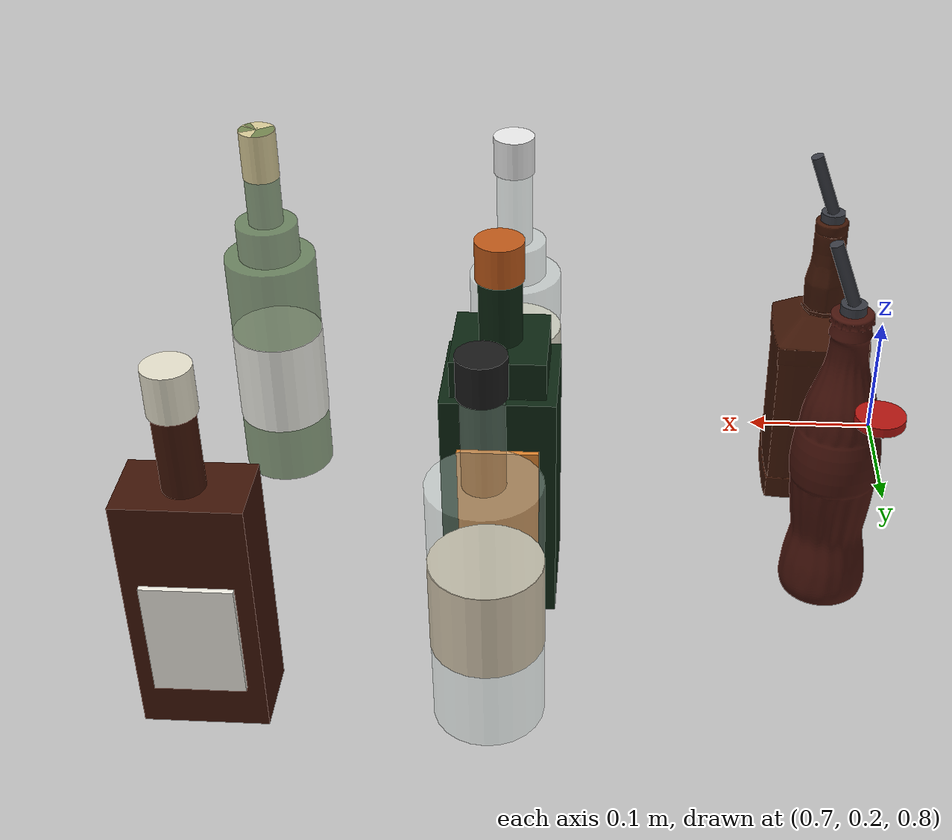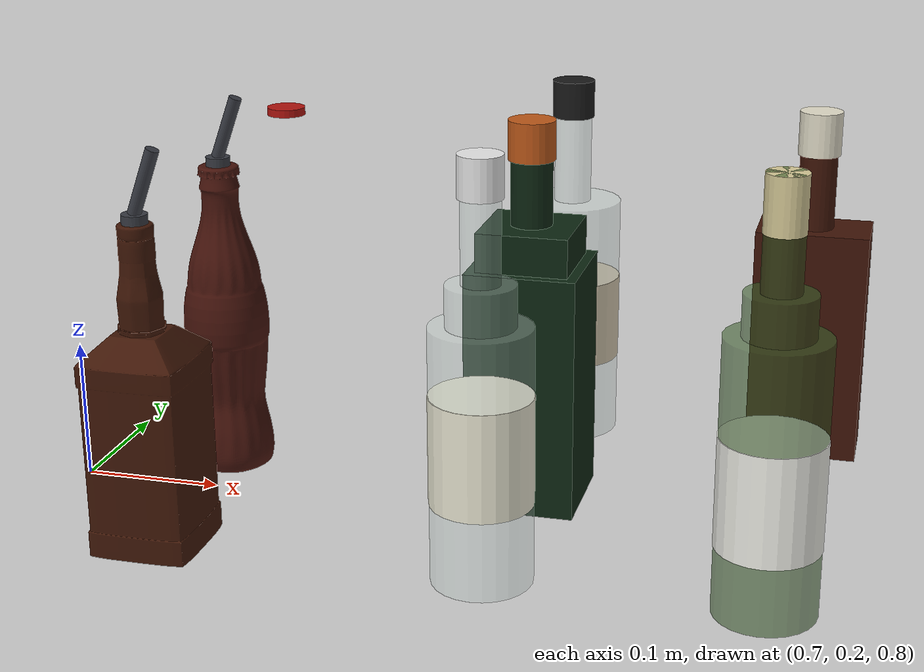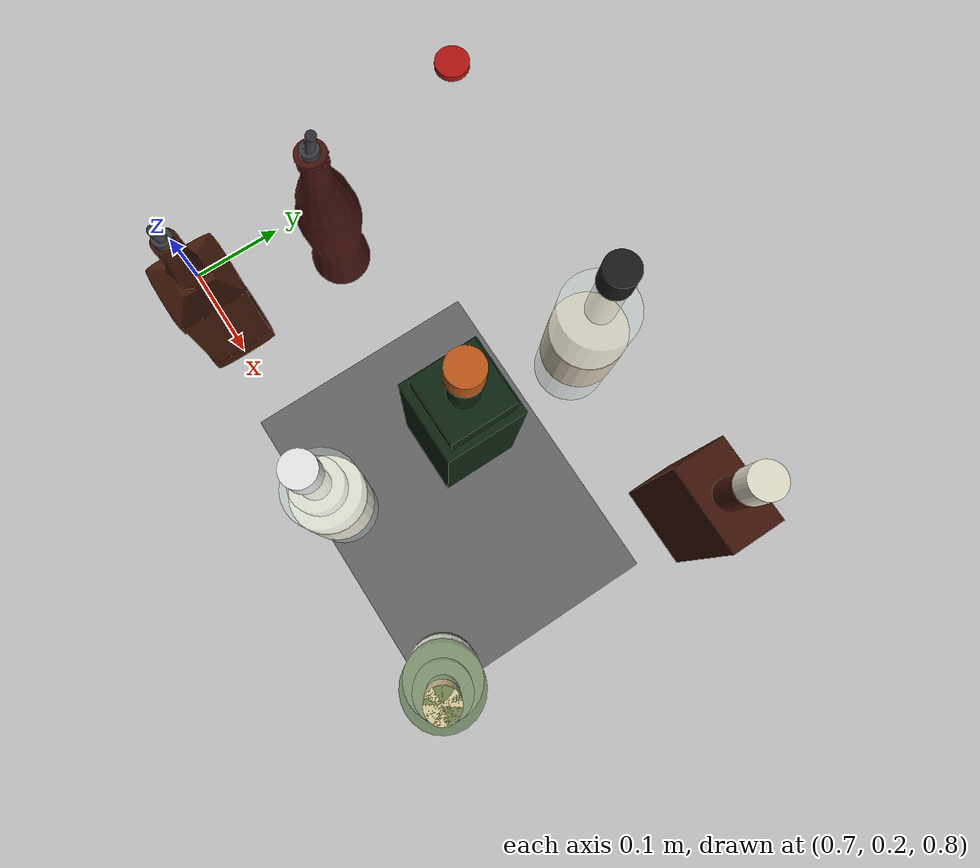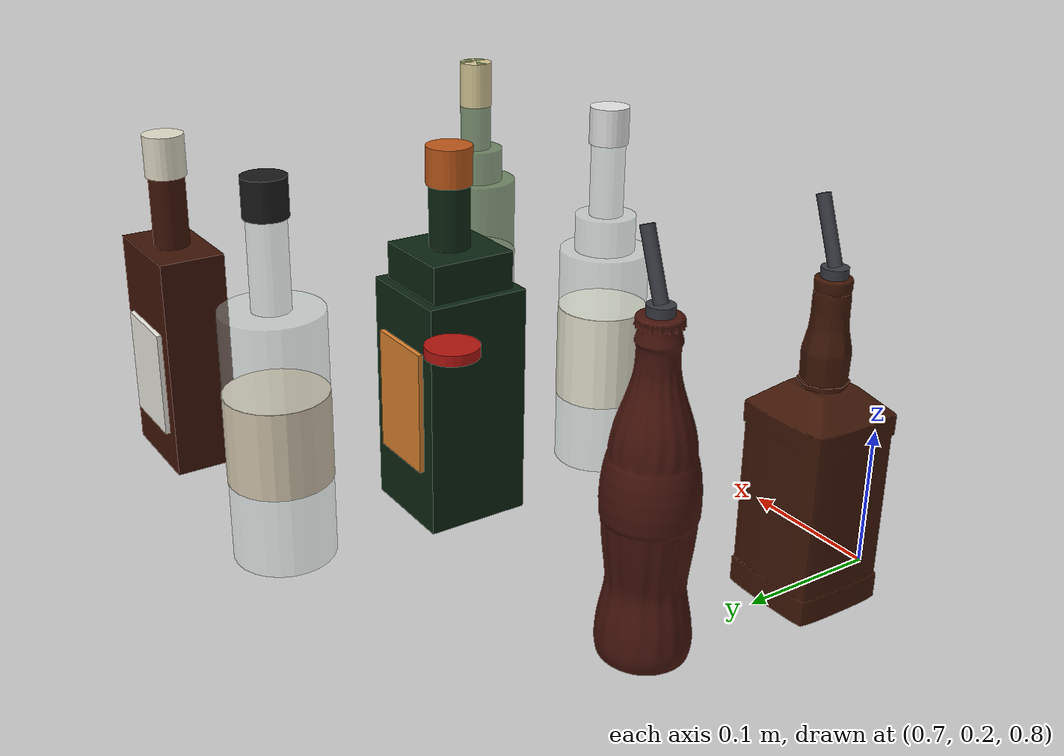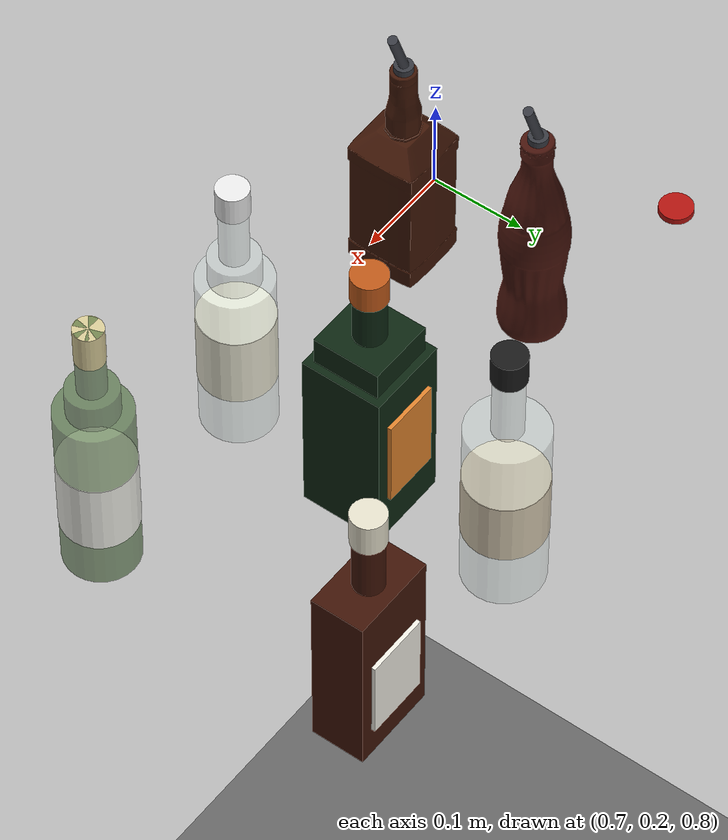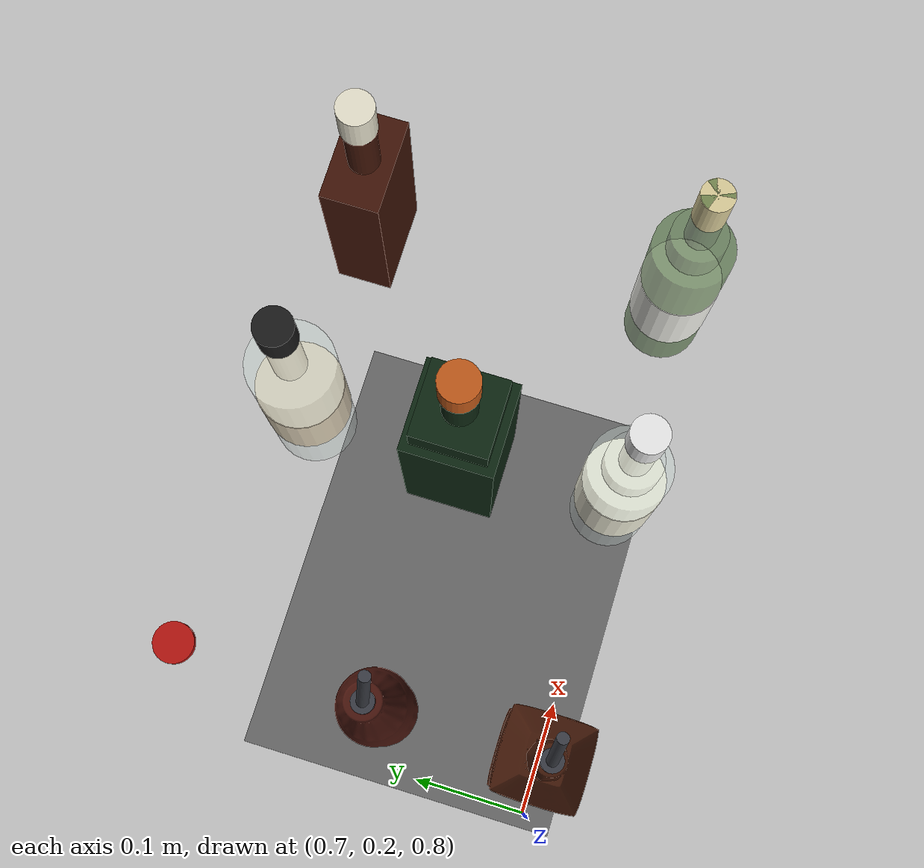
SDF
<sdf version="1.9">
 <world name="workcell_world">
  <physics name="1ms" type="ignored">
   <max_step_size>0.001</max_step_size>
   <real_time_factor>1.0</real_time_factor>
   <dart><collision_detector>bullet</collision_detector></dart>
  </physics>
  <plugin filename="gz-sim-physics-system" name="gz::sim::systems::Physics"/>
  <plugin filename="gz-sim-user-commands-system" name="gz::sim::systems::UserCommands"/>
  <plugin filename="gz-sim-scene-broadcaster-system" name="gz::sim::systems::SceneBroadcaster"/>
  <plugin filename="gz-sim-sensors-system" name="gz::sim::systems::Sensors">
   <render_engine>ogre2</render_engine>
  </plugin>
  <plugin filename="gz-sim-contact-system" name="gz::sim::systems::Contact"/>
  <light type="directional" name="sun">
   <pose>0 0 10 0 0 0</pose>
   <diffuse>0.8 0.8 0.8 1</diffuse>
   <specular>0.2 0.2 0.2 1</specular>
   <attenuation>
    <range>1000</range>
    <constant>0.9</constant>
    <linear>0.01</linear>
    <quadratic>0.001</quadratic>
   </attenuation>
   <direction>-0.5 0.1 -0.9</direction>
  </light>
  <model name="ground_plane">
   <static>true</static>
   <link name="link">
    <collision name="collision">
     <geometry><plane><normal>0 0 1</normal><size>100 100</size></plane></geometry>
    </collision>
    <visual name="ground_visual">
     <geometry><plane><normal>0 0 1</normal><size>100 100</size></plane></geometry>
     <material><ambient>0.3 0.3 0.3 1</ambient><diffuse>0.4 0.4 0.4 1</diffuse></material>
    </visual>
   </link>
  </model>
  <include>
   <uri>model://jack_daniels_bottle</uri>
   <name>jack_daniels_bottle</name>
   <plugin filename="gz-sim-label-system" name="gz::sim::systems::Label"><label>1</label></plugin>
   <pose>0.75 0.20 0.75 0 0 0</pose>
  </include>
  <include>
   <uri>model://cola_bottle</uri>
   <name>cola_bottle</name>
   <plugin filename="gz-sim-label-system" name="gz::sim::systems::Label"><label>2</label></plugin>
   <pose>0.75 0.35 0.75 0 0 0</pose>
  </include>
  <include><uri>model://beer_cap</uri><name>beer_cap</name><pose>0.75 0.50 1.0081 0 0 0</pose></include>
  <include>
   <uri>model://zubrowka_bottle</uri>
   <name>zubrowka_bottle</name>
   <plugin filename="gz-sim-label-system" name="gz::sim::systems::Label"><label>4</label></plugin>
   <pose>1.00 0.20 0.75 0 0 0</pose>
  </include>
  <include>
   <uri>model://jagermeister_bottle</uri>
   <name>jagermeister_bottle</name>
   <plugin filename="gz-sim-label-system" name="gz::sim::systems::Label"><label>5</label></plugin>
   <pose>1.00 0.35 0.75 0 0 0</pose>
  </include>
  <include>
   <uri>model://tenjaku_bottle</uri>
   <name>tenjaku_bottle</name>
   <plugin filename="gz-sim-label-system" name="gz::sim::systems::Label"><label>6</label></plugin>
   <pose>1.00 0.50 0.75 0 0 0</pose>
  </include>
  <include>
   <uri>model://frontera_bottle</uri>
   <name>frontera_bottle</name>
   <plugin filename="gz-sim-label-system" name="gz::sim::systems::Label"><label>7</label></plugin>
   <pose>1.20 0.20 0.75 0 0 0</pose>
  </include>
  <include>
   <uri>model://ballantines_bottle</uri>
   <name>ballantines_bottle</name>
   <plugin filename="gz-sim-label-system" name="gz::sim::systems::Label"><label>29</label></plugin>
   <pose>1.20 0.50 0.75 0 0 0</pose>
  </include>
  <model name="workcell_view_camera">
   <static>true</static>
   <pose>1.90 -0.40 1.50 0 0.487 2.583</pose>
   <link name="link">
    <sensor name="view_rgb" type="camera">
     <always_on>true</always_on>
     <update_rate>10</update_rate>
     <topic>/workcell/view_camera/image_raw</topic>
     <camera>
      <horizontal_fov>1.2566</horizontal_fov>
      <image><width>640</width><height>400</height><format>R8G8B8</format></image>
      <clip><near>0.1</near><far>6.0</far></clip>
     </camera>
    </sensor>
   </link>
  </model>
 </world>
</sdf>

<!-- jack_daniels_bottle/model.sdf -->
<sdf version="1.9">
  <model name="jack_daniels_bottle">
    <!-- Link origin sits at the center of the bottle's base, so placing the
         model's pose z at table height puts the bottle exactly on the surface. -->
    <link name="bottle_link">
      <inertial>
        <pose>0 0 0.1225 0 0 0</pose>
        <mass>1.35</mass>
        <inertia>
          <ixx>0.007256</ixx>
          <iyy>0.007256</iyy>
          <izz>0.001006</izz>
          <ixy>0</ixy>
          <ixz>0</ixz>
          <iyz>0</iyz>
        </inertia>
      </inertial>

      <visual name="bottle_visual">
        <!-- source mesh is Y-up (Blender OBJ export); rotate +90 deg about X
             so the bottle's height axis becomes Z-up as SDF expects. -->
        <pose>0 0 0 1.570796 0 0</pose>
        <geometry>
          <mesh>
            <uri>meshes/bottle.obj</uri>
          </mesh>
        </geometry>
        <material>
          <ambient>0.05 0.02 0.01 1</ambient>
          <diffuse>0.25 0.09 0.03 1</diffuse>
          <specular>0.4 0.4 0.4 1</specular>
          <emissive>0 0 0 1</emissive>
        </material>
      </visual>

      <collision name="bottle_body_collision">
        <pose>0 0 0.0750 0 0 0</pose>
        <geometry>
          <box>
            <size>0.0772 0.0772 0.150</size>
          </box>
        </geometry>
        <surface>
          <friction>
            <ode>
              <mu>0.9</mu>
              <mu2>0.9</mu2>
            </ode>
          </friction>
        </surface>
      </collision>

      <collision name="bottle_shoulder_collision">
        <pose>0 0 0.1625 0 0 0</pose>
        <geometry>
          <cylinder>
            <radius>0.0250</radius>
            <length>0.025</length>
          </cylinder>
        </geometry>
        <surface>
          <friction>
            <ode>
              <mu>0.9</mu>
              <mu2>0.9</mu2>
            </ode>
          </friction>
        </surface>
      </collision>

      <collision name="bottle_neck_collision">
        <pose>0 0 0.2100 0 0 0</pose>
        <geometry>
          <cylinder>
            <radius>0.0165</radius>
            <length>0.070</length>
          </cylinder>
        </geometry>
        <surface>
          <friction>
            <ode>
              <mu>0.9</mu>
              <mu2>0.9</mu2>
            </ode>
          </friction>
        </surface>
      </collision>

      <collision name="bottle_collar_collision">
        <pose>0 0 0.2360 0 0 0</pose>
        <geometry>
          <cylinder>
            <radius>0.0210</radius>
            <length>0.008</length>
          </cylinder>
        </geometry>
        <surface>
          <friction>
            <ode>
              <mu>0.9</mu>
              <mu2>0.9</mu2>
            </ode>
          </friction>
        </surface>
      </collision>

      <visual name="bottle_pourer_body_visual">
        <pose>0 0 0.2410 0 0 0</pose>
        <geometry><cylinder><radius>0.0095</radius><length>0.022</length></cylinder></geometry>
        <material>
          <ambient>0.05 0.05 0.06 1</ambient>
          <diffuse>0.22 0.23 0.26 1</diffuse>
          <specular>0.7 0.7 0.7 1</specular>
        </material>
      </visual>
      <visual name="bottle_pourer_spout_visual">
        <pose>0.0086 0 0.2755 0 0.349066 0</pose>
        <geometry><cylinder><radius>0.005</radius><length>0.050</length></cylinder></geometry>
        <material>
          <ambient>0.05 0.05 0.06 1</ambient>
          <diffuse>0.22 0.23 0.26 1</diffuse>
          <specular>0.7 0.7 0.7 1</specular>
        </material>
      </visual>

      <collision name="bottle_pourer_body_collision">
        <pose>0 0 0.2410 0 0 0</pose>
        <geometry><cylinder><radius>0.0095</radius><length>0.022</length></cylinder></geometry>
        <surface><friction><ode><mu>0.9</mu><mu2>0.9</mu2></ode></friction></surface>
      </collision>
      <collision name="bottle_pourer_spout_collision">
        <pose>0.0086 0 0.2755 0 0.349066 0</pose>
        <geometry><cylinder><radius>0.005</radius><length>0.050</length></cylinder></geometry>
        <surface><friction><ode><mu>0.9</mu><mu2>0.9</mu2></ode></friction></surface>
      </collision>
    </link>
  </model>
</sdf>

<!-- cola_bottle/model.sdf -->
<sdf version="1.9">
  <model name="cola_bottle">
    <!-- Link origin sits at the center of the bottle's base, same convention
         as jack_daniels_bottle, so placing the model's pose z at table height
         puts the bottle exactly on the surface. -->
    <link name="cola_link">
      <inertial>
        <pose>0 0 0.11 0 0 0</pose>
        <mass>1.05</mass>
        <inertia>
          <ixx>0.005765</ixx>
          <iyy>0.005765</iyy>
          <izz>0.000593</izz>
          <ixy>0</ixy>
          <ixz>0</ixz>
          <iyz>0</iyz>
        </inertia>
      </inertial>

      <velocity_decay>
        <linear>0.05</linear>
        <angular>0.30</angular>
      </velocity_decay>

      <visual name="cola_visual">
        <pose>0 0 0 1.570796 0 0</pose>
        <geometry>
          <mesh>
            <uri>meshes/cola_bottle.obj</uri>
            <scale>0.065074 0.065074 0.065074</scale>
          </mesh>
        </geometry>
        <material>
          <ambient>0.06 0.02 0.01 1</ambient>
          <diffuse>0.28 0.08 0.05 1</diffuse>
          <specular>0.5 0.5 0.5 1</specular>
          <emissive>0 0 0 1</emissive>
        </material>
      </visual>

      <collision name="cola_base_collision">
        <pose>0 0 0.0200 0 0 0</pose>
        <geometry>
          <cylinder>
            <radius>0.0333</radius>
            <length>0.040</length>
          </cylinder>
        </geometry>
        <surface>
          <friction>
            <ode>
              <mu>0.9</mu>
              <mu2>0.9</mu2>
            </ode>
          </friction>
        </surface>
      </collision>

      <collision name="cola_waist_collision">
        <pose>0 0 0.0600 0 0 0</pose>
        <geometry>
          <cylinder>
            <radius>0.0298</radius>
            <length>0.040</length>
          </cylinder>
        </geometry>
        <surface>
          <friction>
            <ode>
              <mu>0.9</mu>
              <mu2>0.9</mu2>
            </ode>
          </friction>
        </surface>
      </collision>

      <collision name="cola_bulge_collision">
        <pose>0 0 0.1150 0 0 0</pose>
        <geometry>
          <cylinder>
            <radius>0.0336</radius>
            <length>0.070</length>
          </cylinder>
        </geometry>
        <surface>
          <friction>
            <ode>
              <mu>0.9</mu>
              <mu2>0.9</mu2>
            </ode>
          </friction>
        </surface>
      </collision>

      <collision name="cola_shoulder_collision">
        <pose>0 0 0.1725 0 0 0</pose>
        <geometry>
          <cylinder>
            <radius>0.0250</radius>
            <length>0.045</length>
          </cylinder>
        </geometry>
        <surface>
          <friction>
            <ode>
              <mu>0.9</mu>
              <mu2>0.9</mu2>
            </ode>
          </friction>
        </surface>
      </collision>

      <collision name="cola_neck_collision">
        <pose>0 0 0.2225 0 0 0</pose>
        <geometry>
          <cylinder>
            <radius>0.0165</radius>
            <length>0.055</length>
          </cylinder>
        </geometry>
        <surface>
          <friction>
            <ode>
              <mu>0.9</mu>
              <mu2>0.9</mu2>
            </ode>
          </friction>
        </surface>
      </collision>

      <collision name="cola_collar_collision">
        <pose>0 0 0.2410 0 0 0</pose>
        <geometry>
          <cylinder>
            <radius>0.0210</radius>
            <length>0.008</length>
          </cylinder>
        </geometry>
        <surface>
          <friction>
            <ode>
              <mu>0.9</mu>
              <mu2>0.9</mu2>
            </ode>
          </friction>
        </surface>
      </collision>

      <visual name="cola_pourer_body_visual">
        <pose>0 0 0.2460 0 0 0</pose>
        <geometry><cylinder><radius>0.0095</radius><length>0.022</length></cylinder></geometry>
        <material>
          <ambient>0.05 0.05 0.06 1</ambient>
          <diffuse>0.22 0.23 0.26 1</diffuse>
          <specular>0.7 0.7 0.7 1</specular>
        </material>
      </visual>
      <visual name="cola_pourer_spout_visual">
        <pose>0.0086 0 0.2805 0 0.349066 0</pose>
        <geometry><cylinder><radius>0.005</radius><length>0.050</length></cylinder></geometry>
        <material>
          <ambient>0.05 0.05 0.06 1</ambient>
          <diffuse>0.22 0.23 0.26 1</diffuse>
          <specular>0.7 0.7 0.7 1</specular>
        </material>
      </visual>

      <collision name="cola_pourer_body_collision">
        <pose>0 0 0.2460 0 0 0</pose>
        <geometry><cylinder><radius>0.0095</radius><length>0.022</length></cylinder></geometry>
        <surface><friction><ode><mu>0.9</mu><mu2>0.9</mu2></ode></friction></surface>
      </collision>
      <collision name="cola_pourer_spout_collision">
        <pose>0.0086 0 0.2805 0 0.349066 0</pose>
        <geometry><cylinder><radius>0.005</radius><length>0.050</length></cylinder></geometry>
        <surface><friction><ode><mu>0.9</mu><mu2>0.9</mu2></ode></friction></surface>
      </collision>
    </link>
  </model>
</sdf>

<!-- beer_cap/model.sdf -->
<!-- GENERATED by ros2_ws/src/bartender_gazebo/scripts/make_beer_and_opener.py.
     Edit that script and re-run it; edits here are overwritten. -->
<sdf version="1.9">
  <model name="beer_cap">
    <link name="cap_link">
      <inertial>
        <pose>0 0 0.003250 0 0 0</pose>
        <mass>0.0022</mass>
        <inertia>
          <ixx>0.000000150</ixx>
          <iyy>0.000000150</iyy>
          <izz>0.000000285</izz>
          <ixy>0</ixy><ixz>0</ixz><iyz>0</iyz>
        </inertia>
      </inertial>

      <visual name="cap_visual">
        <pose>0 0 0.003250 0 0 0</pose>
        <geometry><cylinder><radius>0.016100</radius>
          <length>0.006500</length></cylinder></geometry>
        <material>
          <ambient>0.20 0.02 0.02 1</ambient>
          <diffuse>0.70 0.08 0.06 1</diffuse>
          <specular>0.8 0.8 0.8 1</specular>
        </material>
      </visual>

      <collision name="cap_collision">
        <pose>0 0 0.003250 0 0 0</pose>
        <geometry><cylinder><radius>0.016100</radius>
          <length>0.006500</length></cylinder></geometry>
        <surface><friction><ode><mu>0.9</mu><mu2>0.9</mu2></ode></friction></surface>
      </collision>
    </link>
  </model>
</sdf>

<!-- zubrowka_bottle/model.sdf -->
<!-- GENERATED by ros2_ws/src/bartender_gazebo/scripts/make_real_bar_bottles.py.
     Edit that script and re-run it; edits here are overwritten. -->
<sdf version="1.9">
  <model name="zubrowka_bottle">
    <link name="link">
      <inertial><pose>0 0 0.155 0 0 0</pose><mass>1.2</mass><inertia><ixx>0.010032</ixx><iyy>0.010032</iyy><izz>0.000844</izz><ixy>0</ixy><ixz>0</ixz><iyz>0</iyz></inertia></inertial>
      <velocity_decay><linear>0.05</linear><angular>0.30</angular></velocity_decay>
      <visual name="v0"><pose>0 0.0 0.095 0 0 0</pose><geometry><cylinder><radius>0.037</radius><length>0.19</length></cylinder></geometry><material><ambient>0.255 0.276 0.27 1</ambient><diffuse>0.85 0.92 0.9 0.35</diffuse><specular>0.6 0.6 0.6 1</specular></material><transparency>0.65</transparency></visual>
      <collision name="c0"><pose>0 0 0.095 0 0 0</pose><geometry><cylinder><radius>0.037</radius><length>0.19</length></cylinder></geometry><surface><friction><ode><mu>0.9</mu><mu2>0.9</mu2></ode></friction></surface></collision>
      <visual name="v1"><pose>0 0.0 0.1 0 0 0</pose><geometry><cylinder><radius>0.0375</radius><length>0.08</length></cylinder></geometry><material><ambient>0.279 0.276 0.252 1</ambient><diffuse>0.93 0.92 0.84 1</diffuse><specular>0.6 0.6 0.6 1</specular></material></visual>
      <visual name="v2"><pose>0 0.0 0.205 0 0 0</pose><geometry><cylinder><radius>0.025</radius><length>0.03</length></cylinder></geometry><material><ambient>0.255 0.276 0.27 1</ambient><diffuse>0.85 0.92 0.9 0.35</diffuse><specular>0.6 0.6 0.6 1</specular></material><transparency>0.65</transparency></visual>
      <collision name="c2"><pose>0 0 0.205 0 0 0</pose><geometry><cylinder><radius>0.025</radius><length>0.03</length></cylinder></geometry><surface><friction><ode><mu>0.9</mu><mu2>0.9</mu2></ode></friction></surface></collision>
      <visual name="v3"><pose>0 0.0 0.25 0 0 0</pose><geometry><cylinder><radius>0.014</radius><length>0.06</length></cylinder></geometry><material><ambient>0.255 0.276 0.27 1</ambient><diffuse>0.85 0.92 0.9 0.35</diffuse><specular>0.6 0.6 0.6 1</specular></material><transparency>0.65</transparency></visual>
      <collision name="c3"><pose>0 0 0.25 0 0 0</pose><geometry><cylinder><radius>0.014</radius><length>0.06</length></cylinder></geometry><surface><friction><ode><mu>0.9</mu><mu2>0.9</mu2></ode></friction></surface></collision>
      <visual name="v4"><pose>0 0.0 0.295 0 0 0</pose><geometry><cylinder><radius>0.016</radius><length>0.03</length></cylinder></geometry><material><ambient>0.276 0.276 0.276 1</ambient><diffuse>0.92 0.92 0.92 1</diffuse><specular>0.6 0.6 0.6 1</specular></material></visual>
    </link>
  </model>
</sdf>

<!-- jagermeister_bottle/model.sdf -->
<!-- GENERATED by ros2_ws/src/bartender_gazebo/scripts/make_real_bar_bottles.py.
     Edit that script and re-run it; edits here are overwritten. -->
<sdf version="1.9">
  <model name="jagermeister_bottle">
    <link name="link">
      <inertial><pose>0 0 0.15 0 0 0</pose><mass>1.2</mass><inertia><ixx>0.009542</ixx><iyy>0.009542</iyy><izz>0.001084</izz><ixy>0</ixy><ixz>0</ixz><iyz>0</iyz></inertia></inertial>
      <velocity_decay><linear>0.05</linear><angular>0.30</angular></velocity_decay>
      <visual name="v0"><pose>0 0.0 0.095 0 0 0</pose><geometry><box><size>0.085 0.085 0.19</size></box></geometry><material><ambient>0.015 0.045 0.021 1</ambient><diffuse>0.05 0.15 0.07 1</diffuse><specular>0.6 0.6 0.6 1</specular></material></visual>
      <collision name="c0"><pose>0 0 0.095 0 0 0</pose><geometry><box><size>0.085 0.085 0.19</size></box></geometry><surface><friction><ode><mu>0.9</mu><mu2>0.9</mu2></ode></friction></surface></collision>
      <visual name="v1"><pose>0 0.0445 0.1 0 0 0</pose><geometry><box><size>0.06 0.004 0.1</size></box></geometry><material><ambient>0.264 0.156 0.054 1</ambient><diffuse>0.88 0.52 0.18 1</diffuse><specular>0.6 0.6 0.6 1</specular></material></visual>
      <visual name="v2"><pose>0 0.0 0.205 0 0 0</pose><geometry><box><size>0.07 0.07 0.03</size></box></geometry><material><ambient>0.015 0.045 0.021 1</ambient><diffuse>0.05 0.15 0.07 1</diffuse><specular>0.6 0.6 0.6 1</specular></material></visual>
      <collision name="c2"><pose>0 0 0.205 0 0 0</pose><geometry><box><size>0.07 0.07 0.03</size></box></geometry><surface><friction><ode><mu>0.9</mu><mu2>0.9</mu2></ode></friction></surface></collision>
      <visual name="v3"><pose>0 0.0 0.245 0 0 0</pose><geometry><cylinder><radius>0.016</radius><length>0.05</length></cylinder></geometry><material><ambient>0.015 0.045 0.021 1</ambient><diffuse>0.05 0.15 0.07 1</diffuse><specular>0.6 0.6 0.6 1</specular></material></visual>
      <collision name="c3"><pose>0 0 0.245 0 0 0</pose><geometry><cylinder><radius>0.016</radius><length>0.05</length></cylinder></geometry><surface><friction><ode><mu>0.9</mu><mu2>0.9</mu2></ode></friction></surface></collision>
      <visual name="v4"><pose>0 0.0 0.285 0 0 0</pose><geometry><cylinder><radius>0.018</radius><length>0.03</length></cylinder></geometry><material><ambient>0.225 0.105 0.03 1</ambient><diffuse>0.75 0.35 0.1 1</diffuse><specular>0.6 0.6 0.6 1</specular></material></visual>
    </link>
  </model>
</sdf>

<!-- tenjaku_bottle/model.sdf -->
<!-- GENERATED by ros2_ws/src/bartender_gazebo/scripts/make_real_bar_bottles.py.
     Edit that script and re-run it; edits here are overwritten. -->
<sdf version="1.9">
  <model name="tenjaku_bottle">
    <link name="link">
      <inertial><pose>0 0 0.15 0 0 0</pose><mass>1.2</mass><inertia><ixx>0.009492</ixx><iyy>0.009492</iyy><izz>0.000984</izz><ixy>0</ixy><ixz>0</ixz><iyz>0</iyz></inertia></inertial>
      <velocity_decay><linear>0.05</linear><angular>0.30</angular></velocity_decay>
      <visual name="v0"><pose>0 0.0 0.1 0 0 0</pose><geometry><cylinder><radius>0.04</radius><length>0.2</length></cylinder></geometry><material><ambient>0.255 0.276 0.27 1</ambient><diffuse>0.85 0.92 0.9 0.35</diffuse><specular>0.6 0.6 0.6 1</specular></material><transparency>0.65</transparency></visual>
      <collision name="c0"><pose>0 0 0.1 0 0 0</pose><geometry><cylinder><radius>0.04</radius><length>0.2</length></cylinder></geometry><surface><friction><ode><mu>0.9</mu><mu2>0.9</mu2></ode></friction></surface></collision>
      <visual name="v1"><pose>0 0.0 0.1 0 0 0</pose><geometry><cylinder><radius>0.0405</radius><length>0.07</length></cylinder></geometry><material><ambient>0.255 0.24 0.21 1</ambient><diffuse>0.85 0.8 0.7 1</diffuse><specular>0.6 0.6 0.6 1</specular></material></visual>
      <visual name="v2"><pose>0 0.0 0.235 0 0 0</pose><geometry><cylinder><radius>0.015</radius><length>0.07</length></cylinder></geometry><material><ambient>0.255 0.276 0.27 1</ambient><diffuse>0.85 0.92 0.9 0.35</diffuse><specular>0.6 0.6 0.6 1</specular></material><transparency>0.65</transparency></visual>
      <collision name="c2"><pose>0 0 0.235 0 0 0</pose><geometry><cylinder><radius>0.015</radius><length>0.07</length></cylinder></geometry><surface><friction><ode><mu>0.9</mu><mu2>0.9</mu2></ode></friction></surface></collision>
      <visual name="v3"><pose>0 0.0 0.285 0 0 0</pose><geometry><cylinder><radius>0.017</radius><length>0.03</length></cylinder></geometry><material><ambient>0.03 0.03 0.03 1</ambient><diffuse>0.1 0.1 0.1 1</diffuse><specular>0.6 0.6 0.6 1</specular></material></visual>
    </link>
  </model>
</sdf>

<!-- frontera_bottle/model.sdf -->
<!-- GENERATED by ros2_ws/src/bartender_gazebo/scripts/make_real_bar_bottles.py.
     Edit that script and re-run it; edits here are overwritten. -->
<sdf version="1.9">
  <model name="frontera_bottle">
    <link name="link">
      <inertial><pose>0 0 0.155 0 0 0</pose><mass>1.2</mass><inertia><ixx>0.010032</ixx><iyy>0.010032</iyy><izz>0.000844</izz><ixy>0</ixy><ixz>0</ixz><iyz>0</iyz></inertia></inertial>
      <velocity_decay><linear>0.05</linear><angular>0.30</angular></velocity_decay>
      <visual name="v0"><pose>0 0.0 0.1 0 0 0</pose><geometry><cylinder><radius>0.037</radius><length>0.2</length></cylinder></geometry><material><ambient>0.075 0.12 0.054 1</ambient><diffuse>0.25 0.4 0.18 0.6</diffuse><specular>0.6 0.6 0.6 1</specular></material><transparency>0.4</transparency></visual>
      <collision name="c0"><pose>0 0 0.1 0 0 0</pose><geometry><cylinder><radius>0.037</radius><length>0.2</length></cylinder></geometry><surface><friction><ode><mu>0.9</mu><mu2>0.9</mu2></ode></friction></surface></collision>
      <visual name="v1"><pose>0 0.0 0.09 0 0 0</pose><geometry><cylinder><radius>0.0375</radius><length>0.08</length></cylinder></geometry><material><ambient>0.285 0.285 0.276 1</ambient><diffuse>0.95 0.95 0.92 1</diffuse><specular>0.6 0.6 0.6 1</specular></material></visual>
      <visual name="v2"><pose>0 0.0 0.215 0 0 0</pose><geometry><cylinder><radius>0.025</radius><length>0.03</length></cylinder></geometry><material><ambient>0.075 0.12 0.054 1</ambient><diffuse>0.25 0.4 0.18 0.6</diffuse><specular>0.6 0.6 0.6 1</specular></material><transparency>0.4</transparency></visual>
      <collision name="c2"><pose>0 0 0.215 0 0 0</pose><geometry><cylinder><radius>0.025</radius><length>0.03</length></cylinder></geometry><surface><friction><ode><mu>0.9</mu><mu2>0.9</mu2></ode></friction></surface></collision>
      <visual name="v3"><pose>0 0.0 0.27 0 0 0</pose><geometry><cylinder><radius>0.014</radius><length>0.08</length></cylinder></geometry><material><ambient>0.075 0.12 0.054 1</ambient><diffuse>0.25 0.4 0.18 0.6</diffuse><specular>0.6 0.6 0.6 1</specular></material><transparency>0.4</transparency></visual>
      <collision name="c3"><pose>0 0 0.27 0 0 0</pose><geometry><cylinder><radius>0.014</radius><length>0.08</length></cylinder></geometry><surface><friction><ode><mu>0.9</mu><mu2>0.9</mu2></ode></friction></surface></collision>
      <visual name="v4"><pose>0 0.0 0.29 0 0 0</pose><geometry><cylinder><radius>0.0145</radius><length>0.04</length></cylinder></geometry><material><ambient>0.255 0.24 0.18 1</ambient><diffuse>0.85 0.8 0.6 1</diffuse><specular>0.6 0.6 0.6 1</specular></material></visual>
    </link>
  </model>
</sdf>

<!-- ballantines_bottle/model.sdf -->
<!-- GENERATED by ros2_ws/src/bartender_gazebo/scripts/make_real_bar_bottles.py.
     Edit that script and re-run it; edits here are overwritten. -->
<sdf version="1.9">
  <model name="ballantines_bottle">
    <link name="link">
      <inertial><pose>0 0 0.1425 0 0 0</pose><mass>1.2</mass><inertia><ixx>0.008730</ixx><iyy>0.008730</iyy><izz>0.001215</izz><ixy>0</ixy><ixz>0</ixz><iyz>0</iyz></inertia></inertial>
      <velocity_decay><linear>0.05</linear><angular>0.30</angular></velocity_decay>
      <visual name="v0"><pose>0 0.0 0.095 0 0 0</pose><geometry><box><size>0.09 0.055 0.19</size></box></geometry><material><ambient>0.075 0.024 0.009 1</ambient><diffuse>0.25 0.08 0.03 1</diffuse><specular>0.6 0.6 0.6 1</specular></material></visual>
      <collision name="c0"><pose>0 0 0.095 0 0 0</pose><geometry><box><size>0.09 0.055 0.19</size></box></geometry><surface><friction><ode><mu>0.9</mu><mu2>0.9</mu2></ode></friction></surface></collision>
      <visual name="v1"><pose>0 0.0295 0.08 0 0 0</pose><geometry><box><size>0.065 0.004 0.09</size></box></geometry><material><ambient>0.285 0.282 0.27 1</ambient><diffuse>0.95 0.94 0.9 1</diffuse><specular>0.6 0.6 0.6 1</specular></material></visual>
      <visual name="v2"><pose>0 0.0 0.22 0 0 0</pose><geometry><cylinder><radius>0.015</radius><length>0.06</length></cylinder></geometry><material><ambient>0.075 0.024 0.009 1</ambient><diffuse>0.25 0.08 0.03 1</diffuse><specular>0.6 0.6 0.6 1</specular></material></visual>
      <collision name="c2"><pose>0 0 0.22 0 0 0</pose><geometry><cylinder><radius>0.015</radius><length>0.06</length></cylinder></geometry><surface><friction><ode><mu>0.9</mu><mu2>0.9</mu2></ode></friction></surface></collision>
      <visual name="v3"><pose>0 0.0 0.2675 0 0 0</pose><geometry><cylinder><radius>0.017</radius><length>0.035</length></cylinder></geometry><material><ambient>0.27 0.264 0.24 1</ambient><diffuse>0.9 0.88 0.8 1</diffuse><specular>0.6 0.6 0.6 1</specular></material></visual>
    </link>
  </model>
</sdf>
